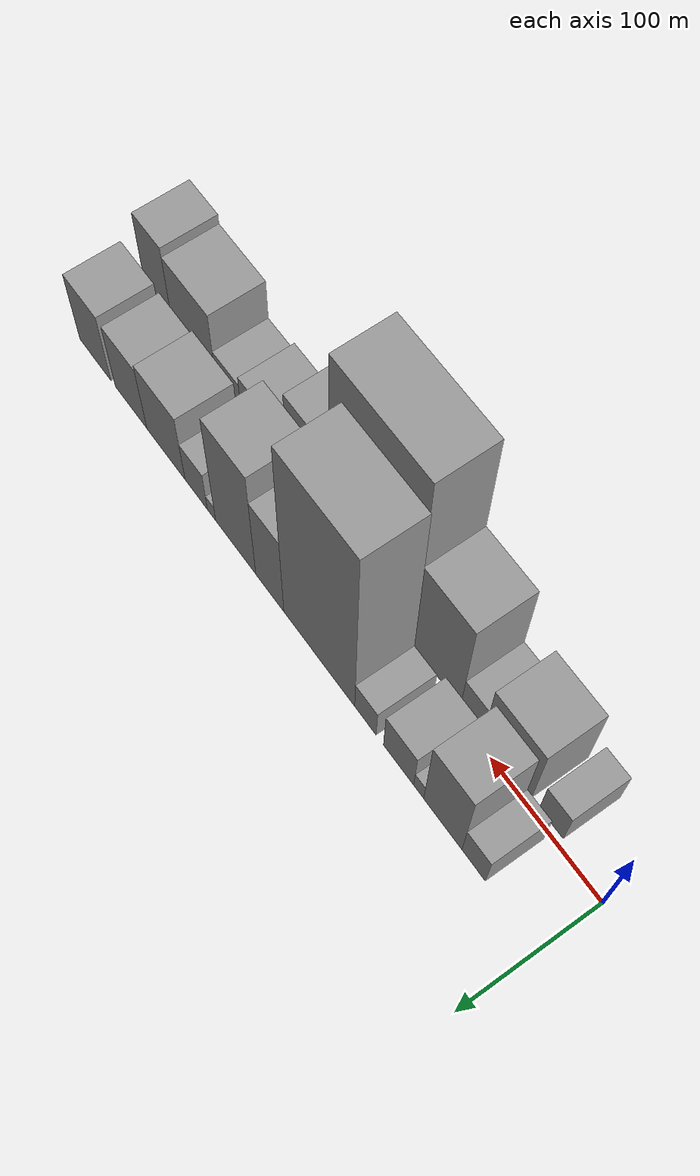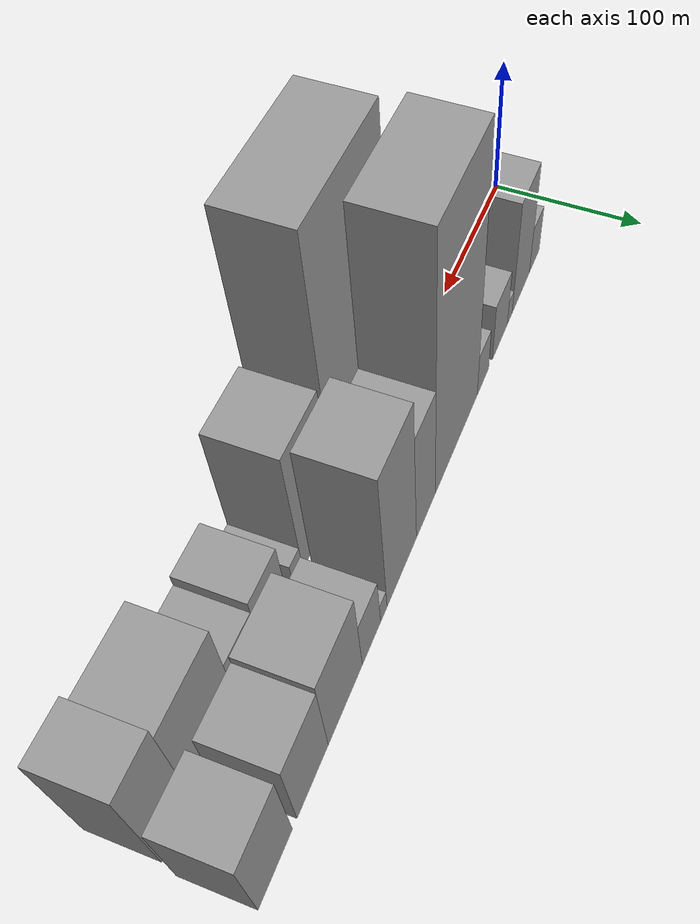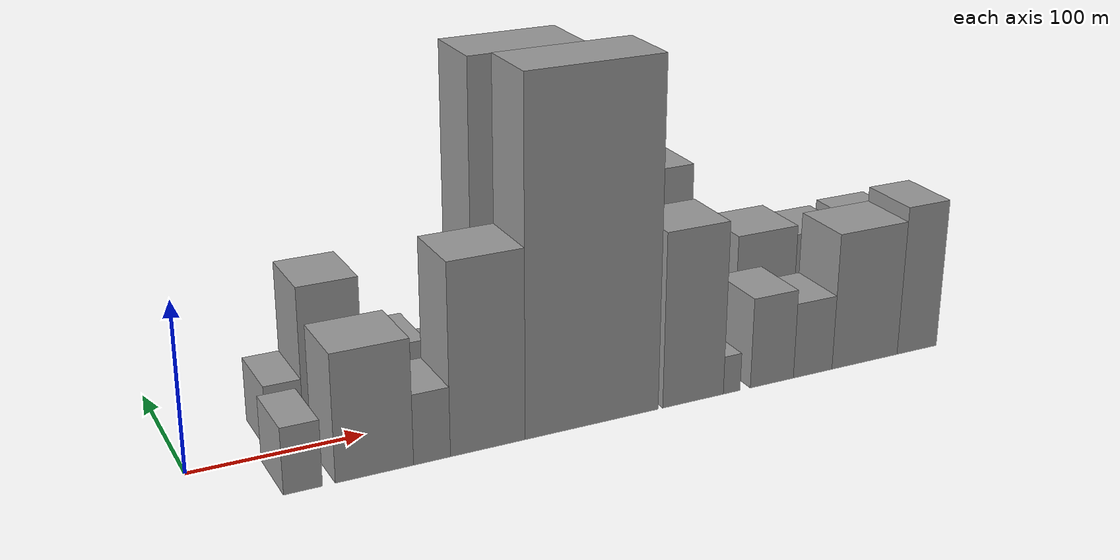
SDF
<sdf version="1.6">
 <world name="default">
  <scene>
   <sky><clouds><speed>12</speed></clouds></sky>
   <ambient>0.4 0.4 0.4 1</ambient>
   <background>0.7 0.7 0.7 1</background>
   <shadows>1</shadows>
  </scene>
  <gravity>0 0 -9.8066</gravity>
  <magnetic_field>6e-06 2.3e-05 -4.2e-05</magnetic_field>
  <physics default="0" name="default_physics" type="ode">
   <ode>
    <solver>
     <type>quick</type>
     <iters>10</iters>
     <sor>1.0</sor>
     <use_dynamic_moi_rescaling>0</use_dynamic_moi_rescaling>
    </solver>
    <constraints>
     <cfm>0</cfm>
     <erp>0.2</erp>
     <contact_max_correcting_vel>100</contact_max_correcting_vel>
     <contact_surface_layer>0.001</contact_surface_layer>
    </constraints>
   </ode>
   <max_step_size>0.004</max_step_size>
   <real_time_factor>1</real_time_factor>
   <real_time_update_rate>250</real_time_update_rate>
  </physics>
  <light name="sun" type="directional">
   <pose>0 0 10 0 0 0</pose>
   <diffuse>0.8 0.8 0.8 1</diffuse>
   <specular>0.2 0.2 0.2 1</specular>
   <attenuation>
    <range>1000</range>
    <constant>0.9</constant>
    <linear>0.01</linear>
    <quadratic>0.001</quadratic>
   </attenuation>
   <direction>-0.5 0.1 -0.9</direction>
  </light>
  <model name="building_1">
   <static>1</static>
   <pose>56.5789 24.5000 0 0.000000 0.000000 1.570796</pose>
   <link name="link">
    <pose>0 0 19.50 0 0 0</pose>
    <collision name="collision"><geometry><box><size>40.0000 21.1579 39.0000</size></box></geometry></collision>
    <visual name="visual">
     <cast_shadows>0</cast_shadows>
     <geometry><box><size>40.0000 21.1579 39.0000</size></box></geometry>
     <material>
      <script>
       <uri>model://grey_wall/materials/scripts</uri>
       <uri>model://grey_wall/materials/textures</uri>
       <name>vrc/grey_wall</name>
      </script>
     </material>
    </visual>
   </link>
  </model>
  <model name="building_2">
   <static>1</static>
   <pose>84.7303 24.5000 0 0.000000 0.000000 1.570796</pose>
   <link name="link">
    <pose>0 0 46.50 0 0 0</pose>
    <collision name="collision"><geometry><box><size>40.0000 35.1449 93.0000</size></box></geometry></collision>
    <visual name="visual">
     <cast_shadows>0</cast_shadows>
     <geometry><box><size>40.0000 35.1449 93.0000</size></box></geometry>
     <material>
      <script>
       <uri>model://grey_wall/materials/scripts</uri>
       <uri>model://grey_wall/materials/textures</uri>
       <name>vrc/grey_wall</name>
      </script>
     </material>
    </visual>
   </link>
  </model>
  <model name="building_3">
   <static>1</static>
   <pose>106.9715 24.5000 0 0.000000 0.000000 1.570796</pose>
   <link name="link">
    <pose>0 0 10.50 0 0 0</pose>
    <collision name="collision"><geometry><box><size>40.0000 9.3375 21.0000</size></box></geometry></collision>
    <visual name="visual">
     <cast_shadows>0</cast_shadows>
     <geometry><box><size>40.0000 9.3375 21.0000</size></box></geometry>
     <material>
      <script>
       <uri>model://grey_wall/materials/scripts</uri>
       <uri>model://grey_wall/materials/textures</uri>
       <name>vrc/grey_wall</name>
      </script>
     </material>
    </visual>
   </link>
  </model>
  <model name="building_4">
   <static>1</static>
   <pose>125.9416 24.5000 0 0.000000 0.000000 1.570796</pose>
   <link name="link">
    <pose>0 0 24.00 0 0 0</pose>
    <collision name="collision"><geometry><box><size>40.0000 28.6027 48.0000</size></box></geometry></collision>
    <visual name="visual">
     <cast_shadows>0</cast_shadows>
     <geometry><box><size>40.0000 28.6027 48.0000</size></box></geometry>
     <material>
      <script>
       <uri>model://grey_wall/materials/scripts</uri>
       <uri>model://grey_wall/materials/textures</uri>
       <name>vrc/grey_wall</name>
      </script>
     </material>
    </visual>
   </link>
  </model>
  <model name="building_5">
   <static>1</static>
   <pose>157.6252 24.5000 0 0.000000 0.000000 1.570796</pose>
   <link name="link">
    <pose>0 0 18.00 0 0 0</pose>
    <collision name="collision"><geometry><box><size>40.0000 20.7644 36.0000</size></box></geometry></collision>
    <visual name="visual">
     <cast_shadows>0</cast_shadows>
     <geometry><box><size>40.0000 20.7644 36.0000</size></box></geometry>
     <material>
      <script>
       <uri>model://grey_wall/materials/scripts</uri>
       <uri>model://grey_wall/materials/textures</uri>
       <name>vrc/grey_wall</name>
      </script>
     </material>
    </visual>
   </link>
  </model>
  <model name="building_6">
   <static>1</static>
   <pose>203.3372 24.5000 0 0.000000 0.000000 1.570796</pose>
   <link name="link">
    <pose>0 0 103.50 0 0 0</pose>
    <collision name="collision"><geometry><box><size>40.0000 70.6595 207.0000</size></box></geometry></collision>
    <visual name="visual">
     <cast_shadows>0</cast_shadows>
     <geometry><box><size>40.0000 70.6595 207.0000</size></box></geometry>
     <material>
      <script>
       <uri>model://grey_wall/materials/scripts</uri>
       <uri>model://grey_wall/materials/textures</uri>
       <name>vrc/grey_wall</name>
      </script>
     </material>
    </visual>
   </link>
  </model>
  <model name="building_7">
   <static>1</static>
   <pose>253.1408 24.5000 0 0.000000 0.000000 1.570796</pose>
   <link name="link">
    <pose>0 0 48.00 0 0 0</pose>
    <collision name="collision"><geometry><box><size>40.0000 28.9477 96.0000</size></box></geometry></collision>
    <visual name="visual">
     <cast_shadows>0</cast_shadows>
     <geometry><box><size>40.0000 28.9477 96.0000</size></box></geometry>
     <material>
      <script>
       <uri>model://grey_wall/materials/scripts</uri>
       <uri>model://grey_wall/materials/textures</uri>
       <name>vrc/grey_wall</name>
      </script>
     </material>
    </visual>
   </link>
  </model>
  <model name="building_8">
   <static>1</static>
   <pose>288.7984 24.5000 0 0.000000 0.000000 1.570796</pose>
   <link name="link">
    <pose>0 0 63.00 0 0 0</pose>
    <collision name="collision"><geometry><box><size>40.0000 42.3676 126.0000</size></box></geometry></collision>
    <visual name="visual">
     <cast_shadows>0</cast_shadows>
     <geometry><box><size>40.0000 42.3676 126.0000</size></box></geometry>
     <material>
      <script>
       <uri>model://grey_wall/materials/scripts</uri>
       <uri>model://grey_wall/materials/textures</uri>
       <name>vrc/grey_wall</name>
      </script>
     </material>
    </visual>
   </link>
  </model>
  <model name="building_9">
   <static>1</static>
   <pose>314.4050 24.5000 0 0.000000 0.000000 1.570796</pose>
   <link name="link">
    <pose>0 0 9.00 0 0 0</pose>
    <collision name="collision"><geometry><box><size>40.0000 8.8455 18.0000</size></box></geometry></collision>
    <visual name="visual">
     <cast_shadows>0</cast_shadows>
     <geometry><box><size>40.0000 8.8455 18.0000</size></box></geometry>
     <material>
      <script>
       <uri>model://grey_wall/materials/scripts</uri>
       <uri>model://grey_wall/materials/textures</uri>
       <name>vrc/grey_wall</name>
      </script>
     </material>
    </visual>
   </link>
  </model>
  <model name="building_10">
   <static>1</static>
   <pose>330.9381 24.5000 0 0.000000 0.000000 1.570796</pose>
   <link name="link">
    <pose>0 0 22.50 0 0 0</pose>
    <collision name="collision"><geometry><box><size>40.0000 24.2208 45.0000</size></box></geometry></collision>
    <visual name="visual">
     <cast_shadows>0</cast_shadows>
     <geometry><box><size>40.0000 24.2208 45.0000</size></box></geometry>
     <material>
      <script>
       <uri>model://grey_wall/materials/scripts</uri>
       <uri>model://grey_wall/materials/textures</uri>
       <name>vrc/grey_wall</name>
      </script>
     </material>
    </visual>
   </link>
  </model>
  <model name="building_11">
   <static>1</static>
   <pose>364.2651 24.5000 0 0.000000 0.000000 1.570796</pose>
   <link name="link">
    <pose>0 0 37.50 0 0 0</pose>
    <collision name="collision"><geometry><box><size>40.0000 42.4332 75.0000</size></box></geometry></collision>
    <visual name="visual">
     <cast_shadows>0</cast_shadows>
     <geometry><box><size>40.0000 42.4332 75.0000</size></box></geometry>
     <material>
      <script>
       <uri>model://grey_wall/materials/scripts</uri>
       <uri>model://grey_wall/materials/textures</uri>
       <name>vrc/grey_wall</name>
      </script>
     </material>
    </visual>
   </link>
  </model>
  <model name="building_12">
   <static>1</static>
   <pose>403.4173 24.5000 0 0.000000 0.000000 1.570796</pose>
   <link name="link">
    <pose>0 0 34.50 0 0 0</pose>
    <collision name="collision"><geometry><box><size>40.0000 35.8711 69.0000</size></box></geometry></collision>
    <visual name="visual">
     <cast_shadows>0</cast_shadows>
     <geometry><box><size>40.0000 35.8711 69.0000</size></box></geometry>
     <material>
      <script>
       <uri>model://grey_wall/materials/scripts</uri>
       <uri>model://grey_wall/materials/textures</uri>
       <name>vrc/grey_wall</name>
      </script>
     </material>
    </visual>
   </link>
  </model>
  <model name="building_13">
   <static>1</static>
   <pose>444.4437 24.5000 0 0.000000 0.000000 1.570796</pose>
   <link name="link">
    <pose>0 0 36.00 0 0 0</pose>
    <collision name="collision"><geometry><box><size>40.0000 36.1818 72.0000</size></box></geometry></collision>
    <visual name="visual">
     <cast_shadows>0</cast_shadows>
     <geometry><box><size>40.0000 36.1818 72.0000</size></box></geometry>
     <material>
      <script>
       <uri>model://grey_wall/materials/scripts</uri>
       <uri>model://grey_wall/materials/textures</uri>
       <name>vrc/grey_wall</name>
      </script>
     </material>
    </visual>
   </link>
  </model>
  <model name="building_14">
   <static>1</static>
   <pose>50.6177 -24.5000 0 0.000000 0.000000 1.570796</pose>
   <link name="link">
    <pose>0 0 19.50 0 0 0</pose>
    <collision name="collision"><geometry><box><size>40.0000 21.2354 39.0000</size></box></geometry></collision>
    <visual name="visual">
     <cast_shadows>0</cast_shadows>
     <geometry><box><size>40.0000 21.2354 39.0000</size></box></geometry>
     <material>
      <script>
       <uri>model://grey_wall/materials/scripts</uri>
       <uri>model://grey_wall/materials/textures</uri>
       <name>vrc/grey_wall</name>
      </script>
     </material>
    </visual>
   </link>
  </model>
  <model name="building_15">
   <static>1</static>
   <pose>90.2534 -24.5000 0 0.000000 0.000000 1.570796</pose>
   <link name="link">
    <pose>0 0 37.50 0 0 0</pose>
    <collision name="collision"><geometry><box><size>40.0000 44.0358 75.0000</size></box></geometry></collision>
    <visual name="visual">
     <cast_shadows>0</cast_shadows>
     <geometry><box><size>40.0000 44.0358 75.0000</size></box></geometry>
     <material>
      <script>
       <uri>model://grey_wall/materials/scripts</uri>
       <uri>model://grey_wall/materials/textures</uri>
       <name>vrc/grey_wall</name>
      </script>
     </material>
    </visual>
   </link>
  </model>
  <model name="building_16">
   <static>1</static>
   <pose>122.9438 -24.5000 0 0.000000 0.000000 1.570796</pose>
   <link name="link">
    <pose>0 0 21.00 0 0 0</pose>
    <collision name="collision"><geometry><box><size>40.0000 21.3450 42.0000</size></box></geometry></collision>
    <visual name="visual">
     <cast_shadows>0</cast_shadows>
     <geometry><box><size>40.0000 21.3450 42.0000</size></box></geometry>
     <material>
      <script>
       <uri>model://grey_wall/materials/scripts</uri>
       <uri>model://grey_wall/materials/textures</uri>
       <name>vrc/grey_wall</name>
      </script>
     </material>
    </visual>
   </link>
  </model>
  <model name="building_17">
   <static>1</static>
   <pose>155.9370 -24.5000 0 0.000000 0.000000 1.570796</pose>
   <link name="link">
    <pose>0 0 57.00 0 0 0</pose>
    <collision name="collision"><geometry><box><size>40.0000 44.6416 114.0000</size></box></geometry></collision>
    <visual name="visual">
     <cast_shadows>0</cast_shadows>
     <geometry><box><size>40.0000 44.6416 114.0000</size></box></geometry>
     <material>
      <script>
       <uri>model://grey_wall/materials/scripts</uri>
       <uri>model://grey_wall/materials/textures</uri>
       <name>vrc/grey_wall</name>
      </script>
     </material>
    </visual>
   </link>
  </model>
  <model name="building_18">
   <static>1</static>
   <pose>220.2204 -24.5000 0 0.000000 0.000000 1.570796</pose>
   <link name="link">
    <pose>0 0 105.00 0 0 0</pose>
    <collision name="collision"><geometry><box><size>40.0000 83.9252 210.0000</size></box></geometry></collision>
    <visual name="visual">
     <cast_shadows>0</cast_shadows>
     <geometry><box><size>40.0000 83.9252 210.0000</size></box></geometry>
     <material>
      <script>
       <uri>model://grey_wall/materials/scripts</uri>
       <uri>model://grey_wall/materials/textures</uri>
       <name>vrc/grey_wall</name>
      </script>
     </material>
    </visual>
   </link>
  </model>
  <model name="building_19">
   <static>1</static>
   <pose>285.4245 -24.5000 0 0.000000 0.000000 1.570796</pose>
   <link name="link">
    <pose>0 0 54.00 0 0 0</pose>
    <collision name="collision"><geometry><box><size>40.0000 40.4829 108.0000</size></box></geometry></collision>
    <visual name="visual">
     <cast_shadows>0</cast_shadows>
     <geometry><box><size>40.0000 40.4829 108.0000</size></box></geometry>
     <material>
      <script>
       <uri>model://grey_wall/materials/scripts</uri>
       <uri>model://grey_wall/materials/textures</uri>
       <name>vrc/grey_wall</name>
      </script>
     </material>
    </visual>
   </link>
  </model>
  <model name="building_20">
   <static>1</static>
   <pose>311.4000 -24.5000 0 0.000000 0.000000 1.570796</pose>
   <link name="link">
    <pose>0 0 12.00 0 0 0</pose>
    <collision name="collision"><geometry><box><size>40.0000 11.4683 24.0000</size></box></geometry></collision>
    <visual name="visual">
     <cast_shadows>0</cast_shadows>
     <geometry><box><size>40.0000 11.4683 24.0000</size></box></geometry>
     <material>
      <script>
       <uri>model://grey_wall/materials/scripts</uri>
       <uri>model://grey_wall/materials/textures</uri>
       <name>vrc/grey_wall</name>
      </script>
     </material>
    </visual>
   </link>
  </model>
  <model name="building_21">
   <static>1</static>
   <pose>339.1826 -24.5000 0 0.000000 0.000000 1.570796</pose>
   <link name="link">
    <pose>0 0 28.50 0 0 0</pose>
    <collision name="collision"><geometry><box><size>40.0000 30.0969 57.0000</size></box></geometry></collision>
    <visual name="visual">
     <cast_shadows>0</cast_shadows>
     <geometry><box><size>40.0000 30.0969 57.0000</size></box></geometry>
     <material>
      <script>
       <uri>model://grey_wall/materials/scripts</uri>
       <uri>model://grey_wall/materials/textures</uri>
       <name>vrc/grey_wall</name>
      </script>
     </material>
    </visual>
   </link>
  </model>
  <model name="building_22">
   <static>1</static>
   <pose>368.0354 -24.5000 0 0.000000 0.000000 1.570796</pose>
   <link name="link">
    <pose>0 0 24.00 0 0 0</pose>
    <collision name="collision"><geometry><box><size>40.0000 27.6086 48.0000</size></box></geometry></collision>
    <visual name="visual">
     <cast_shadows>0</cast_shadows>
     <geometry><box><size>40.0000 27.6086 48.0000</size></box></geometry>
     <material>
      <script>
       <uri>model://grey_wall/materials/scripts</uri>
       <uri>model://grey_wall/materials/textures</uri>
       <name>vrc/grey_wall</name>
      </script>
     </material>
    </visual>
   </link>
  </model>
  <model name="building_23">
   <static>1</static>
   <pose>405.8657 -24.5000 0 0.000000 0.000000 1.570796</pose>
   <link name="link">
    <pose>0 0 43.50 0 0 0</pose>
    <collision name="collision"><geometry><box><size>40.0000 48.0521 87.0000</size></box></geometry></collision>
    <visual name="visual">
     <cast_shadows>0</cast_shadows>
     <geometry><box><size>40.0000 48.0521 87.0000</size></box></geometry>
     <material>
      <script>
       <uri>model://grey_wall/materials/scripts</uri>
       <uri>model://grey_wall/materials/textures</uri>
       <name>vrc/grey_wall</name>
      </script>
     </material>
    </visual>
   </link>
  </model>
  <model name="building_24">
   <static>1</static>
   <pose>444.8008 -24.5000 0 0.000000 0.000000 1.570796</pose>
   <link name="link">
    <pose>0 0 48.00 0 0 0</pose>
    <collision name="collision"><geometry><box><size>40.0000 29.8180 96.0000</size></box></geometry></collision>
    <visual name="visual">
     <cast_shadows>0</cast_shadows>
     <geometry><box><size>40.0000 29.8180 96.0000</size></box></geometry>
     <material>
      <script>
       <uri>model://grey_wall/materials/scripts</uri>
       <uri>model://grey_wall/materials/textures</uri>
       <name>vrc/grey_wall</name>
      </script>
     </material>
    </visual>
   </link>
  </model>
 </world>
</sdf>
